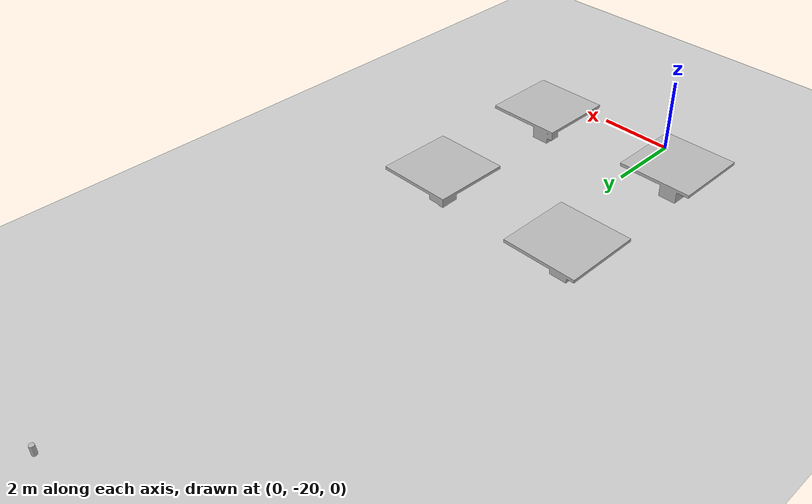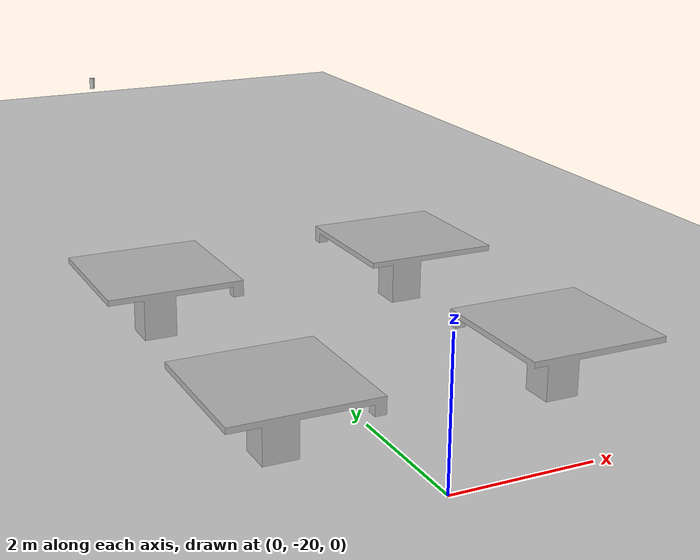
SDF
<sdf version="1.6">
 <world name="default">
  <plugin name="ros_link_attacher_plugin" filename="libgazebo_ros_link_attacher.so"/>
  <light name="sun" type="directional">
   <pose>0 0 10 0 -0 0</pose>
   <diffuse>0.8 0.8 0.8 1</diffuse>
   <specular>0.2 0.2 0.2 1</specular>
   <attenuation>
    <range>1000</range>
    <constant>0.9</constant>
    <linear>0.01</linear>
    <quadratic>0.001</quadratic>
   </attenuation>
   <direction>-0.5 0.1 -0.9</direction>
  </light>
  <model name="ground_plane">
   <static>1</static>
   <link name="link">
    <collision name="collision">
     <geometry><plane><normal>0 0 1</normal><size>100 100</size></plane></geometry>
     <surface><friction><ode><mu>100</mu><mu2>50</mu2></ode></friction></surface>
    </collision>
    <visual name="visual">
     <cast_shadows>0</cast_shadows>
     <geometry><plane><normal>0 0 1</normal><size>100 100</size></plane></geometry>
     <material>
      <script><uri>file://media/materials/scripts/gazebo.material</uri><name>Gazebo/Grey</name></script>
     </material>
    </visual>
   </link>
  </model>
  <gravity>0 0 -9.8</gravity>
  <magnetic_field>6e-06 2.3e-05 -4.2e-05</magnetic_field>
  <atmosphere type="adiabatic"/>
  <physics name="default_physics" default="0" type="ode">
   <max_step_size>0.001</max_step_size>
   <real_time_factor>1</real_time_factor>
   <real_time_update_rate>1000</real_time_update_rate>
  </physics>
  <scene><ambient>0.4 0.4 0.4 1</ambient><background>0.7 0.7 0.7 1</background><shadows>1</shadows></scene>
  <spherical_coordinates>
   <surface_model>EARTH_WGS84</surface_model>
   <latitude_deg>0</latitude_deg>
   <longitude_deg>0</longitude_deg>
   <elevation>0</elevation>
   <heading_deg>0</heading_deg>
  </spherical_coordinates>
  <model name="cafe_table_qr1">
   <static>1</static>
   <link name="link">
    <collision name="surface">
     <pose>0 0 0.96 0 -0 0</pose>
     <geometry><box><size>2 2 0.08</size></box></geometry>
    </collision>
    <collision name="column">
     <pose>0 0 0.46 0 -0 0</pose>
     <geometry><box><size>0.48 0.48 0.92</size></box></geometry>
    </collision>
    <visual name="visual">
     <geometry>
      <mesh><uri>model://cafe_table_qr1/meshes/cafe_table_qr1.dae</uri><scale>1 1 1</scale></mesh>
     </geometry>
    </visual>
   </link>
   <pose>-1.41393 -13.9471 0 0 -0 0</pose>
  </model>
  <model name="cafe_table_qr2">
   <static>1</static>
   <link name="link">
    <collision name="surface">
     <pose>0 0 0.96 0 -0 0</pose>
     <geometry><box><size>2 2 0.08</size></box></geometry>
    </collision>
    <collision name="column">
     <pose>0 0 0.46 0 -0 0</pose>
     <geometry><box><size>0.48 0.48 0.92</size></box></geometry>
    </collision>
    <visual name="visual">
     <geometry>
      <mesh><uri>model://cafe_table_qr2/meshes/cafe_table_qr1.dae</uri><scale>1 1 1</scale></mesh>
     </geometry>
    </visual>
   </link>
   <pose>-1.40226 -18.251 0 0 -0 0</pose>
  </model>
  <model name="cafe_table_qr3">
   <static>1</static>
   <link name="link">
    <collision name="surface">
     <pose>0 0 0.96 0 -0 0</pose>
     <geometry><box><size>2 2 0.08</size></box></geometry>
    </collision>
    <collision name="column">
     <pose>0 0 0.46 0 -0 0</pose>
     <geometry><box><size>0.48 0.48 0.92</size></box></geometry>
    </collision>
    <visual name="visual">
     <geometry>
      <mesh><uri>model://cafe_table_qr3/meshes/cafe_table_qr1.dae</uri><scale>1 1 1</scale></mesh>
     </geometry>
    </visual>
   </link>
   <pose>2.60619 -14.0606 0 0 -0 3.14159</pose>
  </model>
  <model name="cafe_table_qr4">
   <static>1</static>
   <link name="link">
    <collision name="surface">
     <pose>0 0 0.96 0 -0 0</pose>
     <geometry><box><size>2 2 0.08</size></box></geometry>
    </collision>
    <collision name="column">
     <pose>0 0 0.46 0 -0 0</pose>
     <geometry><box><size>0.48 0.48 0.92</size></box></geometry>
    </collision>
    <visual name="visual">
     <geometry>
      <mesh><uri>model://cafe_table_qr4/meshes/cafe_table_qr1.dae</uri><scale>1 1 1</scale></mesh>
     </geometry>
    </visual>
   </link>
   <pose>2.6878 -18.1392 0 0 -0 3.14159</pose>
  </model>
  <model name="beer">
   <link name="link">
    <pose>0 0 0.115 0 -0 0</pose>
    <inertial>
     <mass>0.39</mass>
     <inertia><ixx>0.00058</ixx><ixy>0</ixy><ixz>0</ixz><iyy>0.00058</iyy><iyz>0</iyz><izz>0.00019</izz></inertia>
    </inertial>
    <collision name="collision">
     <geometry><cylinder><radius>0.055</radius><length>0.23</length></cylinder></geometry>
    </collision>
    <visual name="visual">
     <geometry><cylinder><radius>0.055</radius><length>0.23</length></cylinder></geometry>
     <material>
      <script>
       <uri>model://beer/materials/scripts</uri>
       <uri>model://beer/materials/textures</uri>
       <name>Beer/Diffuse</name>
      </script>
     </material>
    </visual>
   </link>
   <pose>0.967208 -2.73362 1.33906 -1.6e-05 -1.1e-05 -0.000103</pose>
  </model>
 </world>
</sdf>
